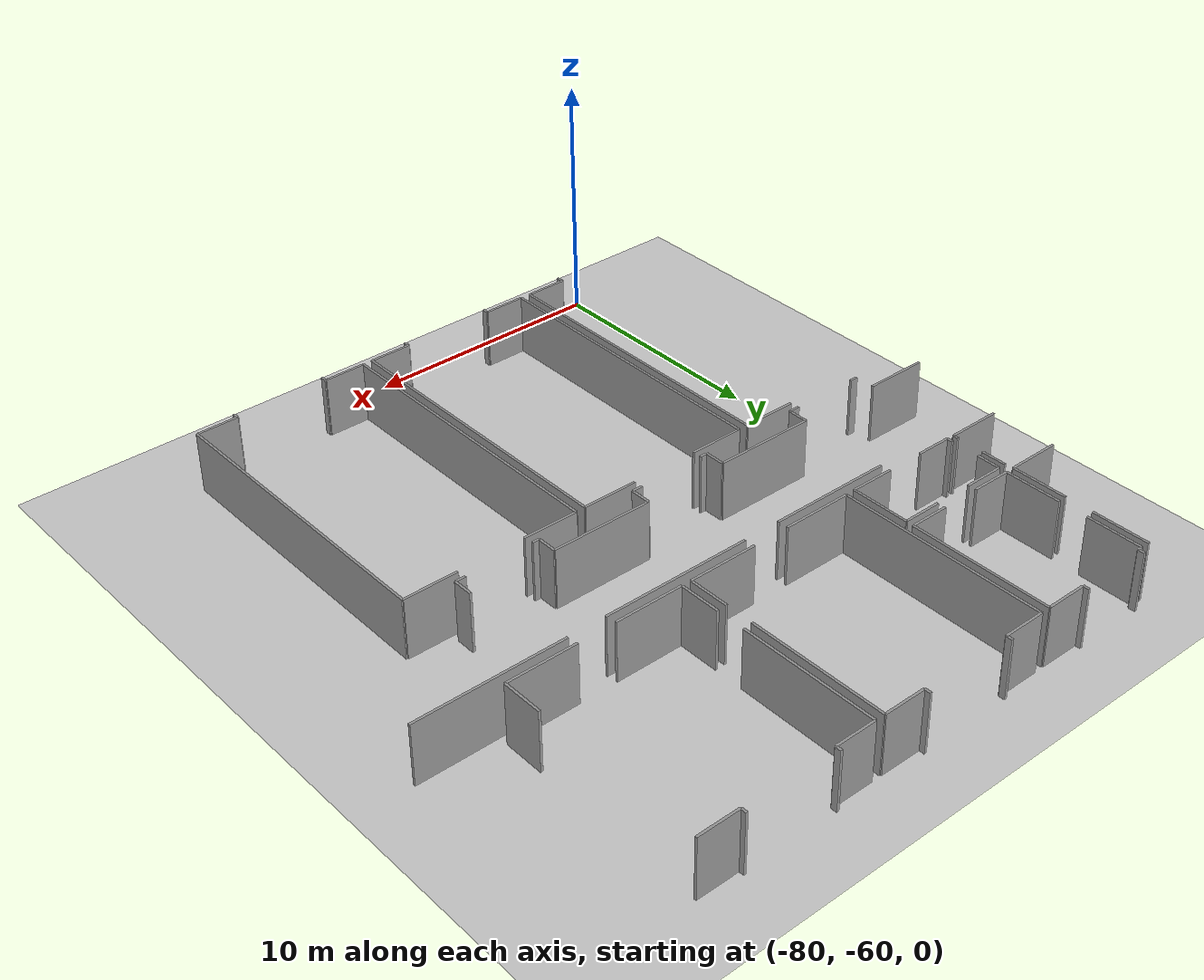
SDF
<sdf version="1.6">
 <world name="default">
  <model name="ground_plane">
   <static>1</static>
   <link name="link">
    <collision name="collision">
     <geometry><plane><normal>0 0 1</normal><size>100 100</size></plane></geometry>
     <surface><friction><ode><mu>100</mu><mu2>50</mu2></ode></friction></surface>
    </collision>
    <visual name="visual">
     <cast_shadows>0</cast_shadows>
     <geometry><plane><normal>0 0 1</normal><size>100 100</size></plane></geometry>
     <material>
      <script><uri>file://media/materials/scripts/gazebo.material</uri><name>Gazebo/Grey</name></script>
     </material>
    </visual>
   </link>
  </model>
  <model name="0510035520_A_40_1_103">
   <static>1</static>
   <link name="Wall_537">
    <collision name="Wall_537_Collision">
     <geometry><box><size>2.39617768923 0.1 2.5</size></box></geometry>
     <pose>1.19808884461 0 1.25 0 0 0</pose>
    </collision>
    <visual name="Wall_537_Visual">
     <pose>1.19808884461 0 1.25 0 0 0</pose>
     <geometry><box><size>2.39617768923 0.1 2.5</size></box></geometry>
     <material>
      <script><uri>file://media/materials/scripts/gazebo.material</uri><name>Gazebo/Grey</name></script>
      <ambient>1 1 1 1</ambient>
     </material>
    </visual>
    <pose>30.9848287765 -106.073184815 0 0 0 1.57079632679</pose>
   </link>
   <link name="Wall_538">
    <collision name="Wall_538_Collision">
     <geometry><box><size>2.30988382053 0.1 2.5</size></box></geometry>
     <pose>1.15494191027 0 1.25 0 0 0</pose>
    </collision>
    <visual name="Wall_538_Visual">
     <pose>1.15494191027 0 1.25 0 0 0</pose>
     <geometry><box><size>2.30988382053 0.1 2.5</size></box></geometry>
     <material>
      <script><uri>file://media/materials/scripts/gazebo.material</uri><name>Gazebo/Grey</name></script>
      <ambient>1 1 1 1</ambient>
     </material>
    </visual>
    <pose>30.9848287765 -102.481583239 0 0 0 1.57079632679</pose>
   </link>
   <link name="Wall_539">
    <collision name="Wall_539_Collision">
     <geometry><box><size>0.191876955095 0.1 2.5</size></box></geometry>
     <pose>0.0959384775477 0 1.25 0 0 0</pose>
    </collision>
    <visual name="Wall_539_Visual">
     <pose>0.0959384775477 0 1.25 0 0 0</pose>
     <geometry><box><size>0.191876955095 0.1 2.5</size></box></geometry>
     <material>
      <script><uri>file://media/materials/scripts/gazebo.material</uri><name>Gazebo/Grey</name></script>
      <ambient>1 1 1 1</ambient>
     </material>
    </visual>
    <pose>30.9848287765 -100.171699418 0 0 0 0.0</pose>
   </link>
   <link name="Wall_540">
    <collision name="Wall_540_Collision">
     <geometry><box><size>0.272587102874 0.1 2.5</size></box></geometry>
     <pose>0.136293551437 0 1.25 0 0 0</pose>
    </collision>
    <visual name="Wall_540_Visual">
     <pose>0.136293551437 0 1.25 0 0 0</pose>
     <geometry><box><size>0.272587102874 0.1 2.5</size></box></geometry>
     <material>
      <script><uri>file://media/materials/scripts/gazebo.material</uri><name>Gazebo/Grey</name></script>
      <ambient>1 1 1 1</ambient>
     </material>
    </visual>
    <pose>31.1767057316 -100.171699418 0 0 0 1.57079632679</pose>
   </link>
   <link name="Wall_541">
    <collision name="Wall_541_Collision">
     <geometry><box><size>0.253805496158 0.1 2.5</size></box></geometry>
     <pose>0.126902748079 0 1.25 0 0 0</pose>
    </collision>
    <visual name="Wall_541_Visual">
     <pose>0.126902748079 0 1.25 0 0 0</pose>
     <geometry><box><size>0.253805496158 0.1 2.5</size></box></geometry>
     <material>
      <script><uri>file://media/materials/scripts/gazebo.material</uri><name>Gazebo/Grey</name></script>
      <ambient>1 1 1 1</ambient>
     </material>
    </visual>
    <pose>34.1299864849 -99.8991123153 0 0 0 -1.57079632679</pose>
   </link>
   <link name="Wall_542">
    <collision name="Wall_542_Collision">
     <geometry><box><size>1.72207029143 0.1 2.5</size></box></geometry>
     <pose>0.861035145716 0 1.25 0 0 0</pose>
    </collision>
    <visual name="Wall_542_Visual">
     <pose>0.861035145716 0 1.25 0 0 0</pose>
     <geometry><box><size>1.72207029143 0.1 2.5</size></box></geometry>
     <material>
      <script><uri>file://media/materials/scripts/gazebo.material</uri><name>Gazebo/Grey</name></script>
      <ambient>1 1 1 1</ambient>
     </material>
    </visual>
    <pose>34.1299864849 -100.152917811 0 0 0 0.0</pose>
   </link>
   <link name="Wall_543">
    <collision name="Wall_543_Collision">
     <geometry><box><size>5.93295727819 0.1 2.5</size></box></geometry>
     <pose>2.96647863909 0 1.25 0 0 0</pose>
    </collision>
    <visual name="Wall_543_Visual">
     <pose>2.96647863909 0 1.25 0 0 0</pose>
     <geometry><box><size>5.93295727819 0.1 2.5</size></box></geometry>
     <material>
      <script><uri>file://media/materials/scripts/gazebo.material</uri><name>Gazebo/Grey</name></script>
      <ambient>1 1 1 1</ambient>
     </material>
    </visual>
    <pose>35.8520567763 -100.152917811 0 0 0 -1.57079632679</pose>
   </link>
   <link name="Wall_544">
    <collision name="Wall_544_Collision">
     <geometry><box><size>1.63323836778 0.1 2.5</size></box></geometry>
     <pose>0.816619183888 0 1.25 0 0 0</pose>
    </collision>
    <visual name="Wall_544_Visual">
     <pose>0.816619183888 0 1.25 0 0 0</pose>
     <geometry><box><size>1.63323836778 0.1 2.5</size></box></geometry>
     <material>
      <script><uri>file://media/materials/scripts/gazebo.material</uri><name>Gazebo/Grey</name></script>
      <ambient>1 1 1 1</ambient>
     </material>
    </visual>
    <pose>35.8520567763 -106.08587509 0 0 0 3.14159265359</pose>
   </link>
   <link name="Wall_545">
    <collision name="Wall_545_Collision">
     <geometry><box><size>1.63430286016 0.1 2.5</size></box></geometry>
     <pose>0.817151430079 0 1.25 0 0 0</pose>
    </collision>
    <visual name="Wall_545_Visual">
     <pose>0.817151430079 0 1.25 0 0 0</pose>
     <geometry><box><size>1.63430286016 0.1 2.5</size></box></geometry>
     <material>
      <script><uri>file://media/materials/scripts/gazebo.material</uri><name>Gazebo/Grey</name></script>
      <ambient>1 1 1 1</ambient>
     </material>
    </visual>
    <pose>32.6190823662 -106.08587509 0 0 0 3.13382762873</pose>
   </link>
   <link name="Wall_548">
    <collision name="Wall_548_Collision">
     <geometry><box><size>2.38044174847 0.1 2.5</size></box></geometry>
     <pose>1.19022087423 0 1.25 0 0 0</pose>
    </collision>
    <visual name="Wall_548_Visual">
     <pose>1.19022087423 0 1.25 0 0 0</pose>
     <geometry><box><size>2.38044174847 0.1 2.5</size></box></geometry>
     <material>
      <script><uri>file://media/materials/scripts/gazebo.material</uri><name>Gazebo/Grey</name></script>
      <ambient>1 1 1 1</ambient>
     </material>
    </visual>
    <pose>30.616303196 -100.156217283 0 0 0 -1.57079632679</pose>
   </link>
   <link name="Wall_549">
    <collision name="Wall_549_Collision">
     <geometry><box><size>2.3515079219 0.1 2.5</size></box></geometry>
     <pose>1.17575396095 0 1.25 0 0 0</pose>
    </collision>
    <visual name="Wall_549_Visual">
     <pose>1.17575396095 0 1.25 0 0 0</pose>
     <geometry><box><size>2.3515079219 0.1 2.5</size></box></geometry>
     <material>
      <script><uri>file://media/materials/scripts/gazebo.material</uri><name>Gazebo/Grey</name></script>
      <ambient>1 1 1 1</ambient>
     </material>
    </visual>
    <pose>30.616303196 -103.722438309 0 0 0 -1.57079632679</pose>
   </link>
   <link name="Wall_550">
    <collision name="Wall_550_Collision">
     <geometry><box><size>2.21295340846 0.1 2.5</size></box></geometry>
     <pose>1.10647670423 0 1.25 0 0 0</pose>
    </collision>
    <visual name="Wall_550_Visual">
     <pose>1.10647670423 0 1.25 0 0 0</pose>
     <geometry><box><size>2.21295340846 0.1 2.5</size></box></geometry>
     <material>
      <script><uri>file://media/materials/scripts/gazebo.material</uri><name>Gazebo/Grey</name></script>
      <ambient>1 1 1 1</ambient>
     </material>
    </visual>
    <pose>30.616303196 -106.073946231 0 0 0 -3.1370050037</pose>
   </link>
   <link name="Wall_553">
    <collision name="Wall_553_Collision">
     <geometry><box><size>1.06522166738 0.1 2.5</size></box></geometry>
     <pose>0.532610833688 0 1.25 0 0 0</pose>
    </collision>
    <visual name="Wall_553_Visual">
     <pose>0.532610833688 0 1.25 0 0 0</pose>
     <geometry><box><size>1.06522166738 0.1 2.5</size></box></geometry>
     <material>
      <script><uri>file://media/materials/scripts/gazebo.material</uri><name>Gazebo/Grey</name></script>
      <ambient>1 1 1 1</ambient>
     </material>
    </visual>
    <pose>30.6574196864 -106.418867901 0 0 0 -1.57079632679</pose>
   </link>
   <link name="Wall_554">
    <collision name="Wall_554_Collision">
     <geometry><box><size>0.21268900578 0.1 2.5</size></box></geometry>
     <pose>0.10634450289 0 1.25 0 0 0</pose>
    </collision>
    <visual name="Wall_554_Visual">
     <pose>0.10634450289 0 1.25 0 0 0</pose>
     <geometry><box><size>0.21268900578 0.1 2.5</size></box></geometry>
     <material>
      <script><uri>file://media/materials/scripts/gazebo.material</uri><name>Gazebo/Grey</name></script>
      <ambient>1 1 1 1</ambient>
     </material>
    </visual>
    <pose>30.6574196864 -108.650072017 0 0 0 -1.57079632679</pose>
   </link>
   <link name="Wall_555">
    <collision name="Wall_555_Collision">
     <geometry><box><size>2.24848145523 0.1 2.5</size></box></geometry>
     <pose>1.12424072762 0 1.25 0 0 0</pose>
    </collision>
    <visual name="Wall_555_Visual">
     <pose>1.12424072762 0 1.25 0 0 0</pose>
     <geometry><box><size>2.24848145523 0.1 2.5</size></box></geometry>
     <material>
      <script><uri>file://media/materials/scripts/gazebo.material</uri><name>Gazebo/Grey</name></script>
      <ambient>1 1 1 1</ambient>
     </material>
    </visual>
    <pose>30.6574196864 -108.862761023 0 0 0 -3.13752901189</pose>
   </link>
   <link name="Wall_556">
    <collision name="Wall_556_Collision">
     <geometry><box><size>1.65278139098 0.1 2.5</size></box></geometry>
     <pose>0.826390695491 0 1.25 0 0 0</pose>
    </collision>
    <visual name="Wall_556_Visual">
     <pose>0.826390695491 0 1.25 0 0 0</pose>
     <geometry><box><size>1.65278139098 0.1 2.5</size></box></geometry>
     <material>
      <script><uri>file://media/materials/scripts/gazebo.material</uri><name>Gazebo/Grey</name></script>
      <ambient>1 1 1 1</ambient>
     </material>
    </visual>
    <pose>30.9893972754 -106.418867901 0 0 0 0.0</pose>
   </link>
   <link name="Wall_557">
    <collision name="Wall_557_Collision">
     <geometry><box><size>1.5987208203 0.1 2.5</size></box></geometry>
     <pose>0.79936041015 0 1.25 0 0 0</pose>
    </collision>
    <visual name="Wall_557_Visual">
     <pose>0.79936041015 0 1.25 0 0 0</pose>
     <geometry><box><size>1.5987208203 0.1 2.5</size></box></geometry>
     <material>
      <script><uri>file://media/materials/scripts/gazebo.material</uri><name>Gazebo/Grey</name></script>
      <ambient>1 1 1 1</ambient>
     </material>
    </visual>
    <pose>34.2436913471 -106.418867901 0 0 0 0.0</pose>
   </link>
   <link name="Wall_558">
    <collision name="Wall_558_Collision">
     <geometry><box><size>2.46927367212 0.1 2.5</size></box></geometry>
     <pose>1.23463683606 0 1.25 0 0 0</pose>
    </collision>
    <visual name="Wall_558_Visual">
     <pose>1.23463683606 0 1.25 0 0 0</pose>
     <geometry><box><size>2.46927367212 0.1 2.5</size></box></geometry>
     <material>
      <script><uri>file://media/materials/scripts/gazebo.material</uri><name>Gazebo/Grey</name></script>
      <ambient>1 1 1 1</ambient>
     </material>
    </visual>
    <pose>35.8424121674 -106.418867901 0 0 0 -1.57079632679</pose>
   </link>
   <link name="Wall_559">
    <collision name="Wall_559_Collision">
     <geometry><box><size>1.83932843066 0.1 2.5</size></box></geometry>
     <pose>0.919664215329 0 1.25 0 0 0</pose>
    </collision>
    <visual name="Wall_559_Visual">
     <pose>0.919664215329 0 1.25 0 0 0</pose>
     <geometry><box><size>1.83932843066 0.1 2.5</size></box></geometry>
     <material>
      <script><uri>file://media/materials/scripts/gazebo.material</uri><name>Gazebo/Grey</name></script>
      <ambient>1 1 1 1</ambient>
     </material>
    </visual>
    <pose>35.8424121674 -108.888141573 0 0 0 3.14159265359</pose>
   </link>
   <link name="Wall_560">
    <collision name="Wall_560_Collision">
     <geometry><box><size>1.46775718428 0.1 2.5</size></box></geometry>
     <pose>0.733878592141 0 1.25 0 0 0</pose>
    </collision>
    <visual name="Wall_560_Visual">
     <pose>0.733878592141 0 1.25 0 0 0</pose>
     <geometry><box><size>1.46775718428 0.1 2.5</size></box></geometry>
     <material>
      <script><uri>file://media/materials/scripts/gazebo.material</uri><name>Gazebo/Grey</name></script>
      <ambient>1 1 1 1</ambient>
     </material>
    </visual>
    <pose>32.4350733815 -108.888141573 0 0 0 3.14159265359</pose>
   </link>
   <link name="Wall_561">
    <collision name="Wall_561_Collision">
     <geometry><box><size>0.253297885166 0.1 2.5</size></box></geometry>
     <pose>0.126648942583 0 1.25 0 0 0</pose>
    </collision>
    <visual name="Wall_561_Visual">
     <pose>0.126648942583 0 1.25 0 0 0</pose>
     <geometry><box><size>0.253297885166 0.1 2.5</size></box></geometry>
     <material>
      <script><uri>file://media/materials/scripts/gazebo.material</uri><name>Gazebo/Grey</name></script>
      <ambient>1 1 1 1</ambient>
     </material>
    </visual>
    <pose>30.9673161972 -108.888141573 0 0 0 1.57079632679</pose>
   </link>
   <link name="Wall_562">
    <collision name="Wall_562_Collision">
     <geometry><box><size>0.997699978845 0.1 2.5</size></box></geometry>
     <pose>0.498849989422 0 1.25 0 0 0</pose>
    </collision>
    <visual name="Wall_562_Visual">
     <pose>0.498849989422 0 1.25 0 0 0</pose>
     <geometry><box><size>0.997699978845 0.1 2.5</size></box></geometry>
     <material>
      <script><uri>file://media/materials/scripts/gazebo.material</uri><name>Gazebo/Grey</name></script>
      <ambient>1 1 1 1</ambient>
     </material>
    </visual>
    <pose>30.9673161972 -107.4163235 0 0 0 1.54866253741</pose>
   </link>
   <link name="Wall_563">
    <collision name="Wall_563_Collision">
     <geometry><box><size>8.72837101287 0.1 2.5</size></box></geometry>
     <pose>4.36418550644 0 1.25 0 0 0</pose>
    </collision>
    <visual name="Wall_563_Visual">
     <pose>4.36418550644 0 1.25 0 0 0</pose>
     <geometry><box><size>8.72837101287 0.1 2.5</size></box></geometry>
     <material>
      <script><uri>file://media/materials/scripts/gazebo.material</uri><name>Gazebo/Grey</name></script>
      <ambient>1 1 1 1</ambient>
     </material>
    </visual>
    <pose>36.2606836251 -108.875451298 0 0 0 1.57079632679</pose>
   </link>
   <link name="Wall_564">
    <collision name="Wall_564_Collision">
     <geometry><box><size>1.74237473112 0.1 2.5</size></box></geometry>
     <pose>0.871187365562 0 1.25 0 0 0</pose>
    </collision>
    <visual name="Wall_564_Visual">
     <pose>0.871187365562 0 1.25 0 0 0</pose>
     <geometry><box><size>1.74237473112 0.1 2.5</size></box></geometry>
     <material>
      <script><uri>file://media/materials/scripts/gazebo.material</uri><name>Gazebo/Grey</name></script>
      <ambient>1 1 1 1</ambient>
     </material>
    </visual>
    <pose>36.2606836251 -100.147080285 0 0 0 0.0</pose>
   </link>
   <link name="Wall_565">
    <collision name="Wall_565_Collision">
     <geometry><box><size>0.257104967608 0.1 2.5</size></box></geometry>
     <pose>0.128552483804 0 1.25 0 0 0</pose>
    </collision>
    <visual name="Wall_565_Visual">
     <pose>0.128552483804 0 1.25 0 0 0</pose>
     <geometry><box><size>0.257104967608 0.1 2.5</size></box></geometry>
     <material>
      <script><uri>file://media/materials/scripts/gazebo.material</uri><name>Gazebo/Grey</name></script>
      <ambient>1 1 1 1</ambient>
     </material>
    </visual>
    <pose>38.0030583562 -100.147080285 0 0 0 1.57079632679</pose>
   </link>
   <link name="Wall_566">
    <collision name="Wall_566_Collision">
     <geometry><box><size>0.266495770966 0.1 2.5</size></box></geometry>
     <pose>0.133247885483 0 1.25 0 0 0</pose>
    </collision>
    <visual name="Wall_566_Visual">
     <pose>0.133247885483 0 1.25 0 0 0</pose>
     <geometry><box><size>0.266495770966 0.1 2.5</size></box></geometry>
     <material>
      <script><uri>file://media/materials/scripts/gazebo.material</uri><name>Gazebo/Grey</name></script>
      <ambient>1 1 1 1</ambient>
     </material>
    </visual>
    <pose>41.8385670142 -99.8899753174 0 0 0 -1.57079632679</pose>
   </link>
   <link name="Wall_567">
    <collision name="Wall_567_Collision">
     <geometry><box><size>1.76496342028 0.1 2.5</size></box></geometry>
     <pose>0.882481710141 0 1.25 0 0 0</pose>
    </collision>
    <visual name="Wall_567_Visual">
     <pose>0.882481710141 0 1.25 0 0 0</pose>
     <geometry><box><size>1.76496342028 0.1 2.5</size></box></geometry>
     <material>
      <script><uri>file://media/materials/scripts/gazebo.material</uri><name>Gazebo/Grey</name></script>
      <ambient>1 1 1 1</ambient>
     </material>
    </visual>
    <pose>41.8385670142 -100.156471088 0 0 0 0.0</pose>
   </link>
   <link name="Wall_568">
    <collision name="Wall_568_Collision">
     <geometry><box><size>5.81214586202 0.1 2.5</size></box></geometry>
     <pose>2.90607293101 0 1.25 0 0 0</pose>
    </collision>
    <visual name="Wall_568_Visual">
     <pose>2.90607293101 0 1.25 0 0 0</pose>
     <geometry><box><size>5.81214586202 0.1 2.5</size></box></geometry>
     <material>
      <script><uri>file://media/materials/scripts/gazebo.material</uri><name>Gazebo/Grey</name></script>
      <ambient>1 1 1 1</ambient>
     </material>
    </visual>
    <pose>43.6035304345 -100.156471088 0 0 0 -1.57079632679</pose>
   </link>
   <link name="Wall_569">
    <collision name="Wall_569_Collision">
     <geometry><box><size>1.70760337815 0.1 2.5</size></box></geometry>
     <pose>0.853801689076 0 1.25 0 0 0</pose>
    </collision>
    <visual name="Wall_569_Visual">
     <pose>0.853801689076 0 1.25 0 0 0</pose>
     <geometry><box><size>1.70760337815 0.1 2.5</size></box></geometry>
     <material>
      <script><uri>file://media/materials/scripts/gazebo.material</uri><name>Gazebo/Grey</name></script>
      <ambient>1 1 1 1</ambient>
     </material>
    </visual>
    <pose>43.6035304345 -107.160741366 0 0 0 -1.57079632679</pose>
   </link>
   <link name="Wall_570">
    <collision name="Wall_570_Collision">
     <geometry><box><size>2.88906796277 0.1 2.5</size></box></geometry>
     <pose>1.44453398138 0 1.25 0 0 0</pose>
    </collision>
    <visual name="Wall_570_Visual">
     <pose>1.44453398138 0 1.25 0 0 0</pose>
     <geometry><box><size>2.88906796277 0.1 2.5</size></box></geometry>
     <material>
      <script><uri>file://media/materials/scripts/gazebo.material</uri><name>Gazebo/Grey</name></script>
      <ambient>1 1 1 1</ambient>
     </material>
    </visual>
    <pose>43.6035304345 -108.868344744 0 0 0 3.14159265359</pose>
   </link>
   <link name="Wall_571">
    <collision name="Wall_571_Collision">
     <geometry><box><size>2.89262996934 0.1 2.5</size></box></geometry>
     <pose>1.44631498467 0 1.25 0 0 0</pose>
    </collision>
    <visual name="Wall_571_Visual">
     <pose>1.44631498467 0 1.25 0 0 0</pose>
     <geometry><box><size>2.89262996934 0.1 2.5</size></box></geometry>
     <material>
      <script><uri>file://media/materials/scripts/gazebo.material</uri><name>Gazebo/Grey</name></script>
      <ambient>1 1 1 1</ambient>
     </material>
    </visual>
    <pose>39.1533048648 -108.868344744 0 0 0 -3.13913587166</pose>
   </link>
   <link name="Wall_572">
    <collision name="Wall_572_Collision">
     <geometry><box><size>1.73146109479 0.1 2.5</size></box></geometry>
     <pose>0.865730547395 0 1.25 0 0 0</pose>
    </collision>
    <visual name="Wall_572_Visual">
     <pose>0.865730547395 0 1.25 0 0 0</pose>
     <geometry><box><size>1.73146109479 0.1 2.5</size></box></geometry>
     <material>
      <script><uri>file://media/materials/scripts/gazebo.material</uri><name>Gazebo/Grey</name></script>
      <ambient>1 1 1 1</ambient>
     </material>
    </visual>
    <pose>44.0098730338 -108.873674659 0 0 0 1.57079632679</pose>
   </link>
   <link name="Wall_573">
    <collision name="Wall_573_Collision">
     <geometry><box><size>5.75859290233 0.1 2.5</size></box></geometry>
     <pose>2.87929645116 0 1.25 0 0 0</pose>
    </collision>
    <visual name="Wall_573_Visual">
     <pose>2.87929645116 0 1.25 0 0 0</pose>
     <geometry><box><size>5.75859290233 0.1 2.5</size></box></geometry>
     <material>
      <script><uri>file://media/materials/scripts/gazebo.material</uri><name>Gazebo/Grey</name></script>
      <ambient>1 1 1 1</ambient>
     </material>
    </visual>
    <pose>44.0098730338 -105.92242435 0 0 0 1.57079632679</pose>
   </link>
   <link name="Wall_574">
    <collision name="Wall_574_Collision">
     <geometry><box><size>1.717755598 0.1 2.5</size></box></geometry>
     <pose>0.858877798999 0 1.25 0 0 0</pose>
    </collision>
    <visual name="Wall_574_Visual">
     <pose>0.858877798999 0 1.25 0 0 0</pose>
     <geometry><box><size>1.717755598 0.1 2.5</size></box></geometry>
     <material>
      <script><uri>file://media/materials/scripts/gazebo.material</uri><name>Gazebo/Grey</name></script>
      <ambient>1 1 1 1</ambient>
     </material>
    </visual>
    <pose>44.0098730338 -100.163831448 0 0 0 0.0</pose>
   </link>
   <link name="Wall_575">
    <collision name="Wall_575_Collision">
     <geometry><box><size>0.248983191731 0.1 2.5</size></box></geometry>
     <pose>0.124491595866 0 1.25 0 0 0</pose>
    </collision>
    <visual name="Wall_575_Visual">
     <pose>0.124491595866 0 1.25 0 0 0</pose>
     <geometry><box><size>0.248983191731 0.1 2.5</size></box></geometry>
     <material>
      <script><uri>file://media/materials/scripts/gazebo.material</uri><name>Gazebo/Grey</name></script>
      <ambient>1 1 1 1</ambient>
     </material>
    </visual>
    <pose>45.7276286318 -100.163831448 0 0 0 1.57079632679</pose>
   </link>
   <link name="Wall_576">
    <collision name="Wall_576_Collision">
     <geometry><box><size>0.243399470816 0.1 2.5</size></box></geometry>
     <pose>0.121699735408 0 1.25 0 0 0</pose>
    </collision>
    <visual name="Wall_576_Visual">
     <pose>0.121699735408 0 1.25 0 0 0</pose>
     <geometry><box><size>0.243399470816 0.1 2.5</size></box></geometry>
     <material>
      <script><uri>file://media/materials/scripts/gazebo.material</uri><name>Gazebo/Grey</name></script>
      <ambient>1 1 1 1</ambient>
     </material>
    </visual>
    <pose>49.6012081142 -99.914848256 0 0 0 -1.57079632679</pose>
   </link>
   <link name="Wall_577">
    <collision name="Wall_577_Collision">
     <geometry><box><size>1.74338995311 0.1 2.5</size></box></geometry>
     <pose>0.871694976555 0 1.25 0 0 0</pose>
    </collision>
    <visual name="Wall_577_Visual">
     <pose>0.871694976555 0 1.25 0 0 0</pose>
     <geometry><box><size>1.74338995311 0.1 2.5</size></box></geometry>
     <material>
      <script><uri>file://media/materials/scripts/gazebo.material</uri><name>Gazebo/Grey</name></script>
      <ambient>1 1 1 1</ambient>
     </material>
    </visual>
    <pose>49.6012081142 -100.158247727 0 0 0 0.0</pose>
   </link>
   <link name="Wall_579">
    <collision name="Wall_579_Collision">
     <geometry><box><size>1.69668974182 0.1 2.5</size></box></geometry>
     <pose>0.848344870908 0 1.25 0 0 0</pose>
    </collision>
    <visual name="Wall_579_Visual">
     <pose>0.848344870908 0 1.25 0 0 0</pose>
     <geometry><box><size>1.69668974182 0.1 2.5</size></box></geometry>
     <material>
      <script><uri>file://media/materials/scripts/gazebo.material</uri><name>Gazebo/Grey</name></script>
      <ambient>1 1 1 1</ambient>
     </material>
    </visual>
    <pose>51.3445980673 -107.176984918 0 0 0 -1.57079632679</pose>
   </link>
   <link name="Wall_580">
    <collision name="Wall_580_Collision">
     <geometry><box><size>2.90251965406 0.1 2.5</size></box></geometry>
     <pose>1.45125982703 0 1.25 0 0 0</pose>
    </collision>
    <visual name="Wall_580_Visual">
     <pose>1.45125982703 0 1.25 0 0 0</pose>
     <geometry><box><size>2.90251965406 0.1 2.5</size></box></geometry>
     <material>
      <script><uri>file://media/materials/scripts/gazebo.material</uri><name>Gazebo/Grey</name></script>
      <ambient>1 1 1 1</ambient>
     </material>
    </visual>
    <pose>51.3445980673 -108.873674659 0 0 0 3.14159265359</pose>
   </link>
   <link name="Wall_581">
    <collision name="Wall_581_Collision">
     <geometry><box><size>2.84972811086 0.1 2.5</size></box></geometry>
     <pose>1.42486405543 0 1.25 0 0 0</pose>
    </collision>
    <visual name="Wall_581_Visual">
     <pose>1.42486405543 0 1.25 0 0 0</pose>
     <geometry><box><size>2.84972811086 0.1 2.5</size></box></geometry>
     <material>
      <script><uri>file://media/materials/scripts/gazebo.material</uri><name>Gazebo/Grey</name></script>
      <ambient>1 1 1 1</ambient>
     </material>
    </visual>
    <pose>46.8596011447 -108.873674659 0 0 0 3.14159265359</pose>
   </link>
   <link name="Wall_769">
    <collision name="Wall_769_Collision">
     <geometry><box><size>12.8765680421 0.1 2.5</size></box></geometry>
     <pose>6.43828402104 0 1.25 0 0 0</pose>
    </collision>
    <visual name="Wall_769_Visual">
     <pose>6.43828402104 0 1.25 0 0 0</pose>
     <geometry><box><size>12.8765680421 0.1 2.5</size></box></geometry>
     <material>
      <script><uri>file://media/materials/scripts/gazebo.material</uri><name>Gazebo/Grey</name></script>
      <ambient>1 1 1 1</ambient>
     </material>
    </visual>
    <pose>43.993629482 -127.211883173 0 0 0 1.57079632679</pose>
   </link>
   <link name="Wall_770">
    <collision name="Wall_770_Collision">
     <geometry><box><size>2.28881796435 0.1 2.5</size></box></geometry>
     <pose>1.14440898218 0 1.25 0 0 0</pose>
    </collision>
    <visual name="Wall_770_Visual">
     <pose>1.14440898218 0 1.25 0 0 0</pose>
     <geometry><box><size>2.28881796435 0.1 2.5</size></box></geometry>
     <material>
      <script><uri>file://media/materials/scripts/gazebo.material</uri><name>Gazebo/Grey</name></script>
      <ambient>1 1 1 1</ambient>
     </material>
    </visual>
    <pose>43.993629482 -114.335315131 0 0 0 0.0</pose>
   </link>
   <link name="Wall_771">
    <collision name="Wall_771_Collision">
     <geometry><box><size>2.23196553321 0.1 2.5</size></box></geometry>
     <pose>1.11598276661 0 1.25 0 0 0</pose>
    </collision>
    <visual name="Wall_771_Visual">
     <pose>1.11598276661 0 1.25 0 0 0</pose>
     <geometry><box><size>2.23196553321 0.1 2.5</size></box></geometry>
     <material>
      <script><uri>file://media/materials/scripts/gazebo.material</uri><name>Gazebo/Grey</name></script>
      <ambient>1 1 1 1</ambient>
     </material>
    </visual>
    <pose>49.0791302086 -114.335315131 0 0 0 0.0</pose>
   </link>
   <link name="Wall_772">
    <collision name="Wall_772_Collision">
     <geometry><box><size>12.8824055685 0.1 2.5</size></box></geometry>
     <pose>6.44120278425 0 1.25 0 0 0</pose>
    </collision>
    <visual name="Wall_772_Visual">
     <pose>6.44120278425 0 1.25 0 0 0</pose>
     <geometry><box><size>12.8824055685 0.1 2.5</size></box></geometry>
     <material>
      <script><uri>file://media/materials/scripts/gazebo.material</uri><name>Gazebo/Grey</name></script>
      <ambient>1 1 1 1</ambient>
     </material>
    </visual>
    <pose>51.3110957418 -114.335315131 0 0 0 -1.57079632679</pose>
   </link>
   <link name="Wall_773">
    <collision name="Wall_773_Collision">
     <geometry><box><size>1.7043039067 0.1 2.5</size></box></geometry>
     <pose>0.852151953351 0 1.25 0 0 0</pose>
    </collision>
    <visual name="Wall_773_Visual">
     <pose>0.852151953351 0 1.25 0 0 0</pose>
     <geometry><box><size>1.7043039067 0.1 2.5</size></box></geometry>
     <material>
      <script><uri>file://media/materials/scripts/gazebo.material</uri><name>Gazebo/Grey</name></script>
      <ambient>1 1 1 1</ambient>
     </material>
    </visual>
    <pose>51.3110957418 -127.2177207 0 0 0 3.14159265359</pose>
   </link>
   <link name="Wall_774">
    <collision name="Wall_774_Collision">
     <geometry><box><size>0.2510136357 0.1 2.5</size></box></geometry>
     <pose>0.12550681785 0 1.25 0 0 0</pose>
    </collision>
    <visual name="Wall_774_Visual">
     <pose>0.12550681785 0 1.25 0 0 0</pose>
     <geometry><box><size>0.2510136357 0.1 2.5</size></box></geometry>
     <material>
      <script><uri>file://media/materials/scripts/gazebo.material</uri><name>Gazebo/Grey</name></script>
      <ambient>1 1 1 1</ambient>
     </material>
    </visual>
    <pose>49.6067918351 -127.2177207 0 0 0 -1.57079632679</pose>
   </link>
   <link name="Wall_775">
    <collision name="Wall_775_Collision">
     <geometry><box><size>0.2510136357 0.1 2.5</size></box></geometry>
     <pose>0.12550681785 0 1.25 0 0 0</pose>
    </collision>
    <visual name="Wall_775_Visual">
     <pose>0.12550681785 0 1.25 0 0 0</pose>
     <geometry><box><size>0.2510136357 0.1 2.5</size></box></geometry>
     <material>
      <script><uri>file://media/materials/scripts/gazebo.material</uri><name>Gazebo/Grey</name></script>
      <ambient>1 1 1 1</ambient>
     </material>
    </visual>
    <pose>45.7172226065 -127.468734335 0 0 0 1.57079632679</pose>
   </link>
   <link name="Wall_776">
    <collision name="Wall_776_Collision">
     <geometry><box><size>1.72360300975 0.1 2.5</size></box></geometry>
     <pose>0.861801504876 0 1.25 0 0 0</pose>
    </collision>
    <visual name="Wall_776_Visual">
     <pose>0.861801504876 0 1.25 0 0 0</pose>
     <geometry><box><size>1.72360300975 0.1 2.5</size></box></geometry>
     <material>
      <script><uri>file://media/materials/scripts/gazebo.material</uri><name>Gazebo/Grey</name></script>
      <ambient>1 1 1 1</ambient>
     </material>
    </visual>
    <pose>45.7172226065 -127.2177207 0 0 0 3.13820583102</pose>
   </link>
   <link name="Wall_777">
    <collision name="Wall_777_Collision">
     <geometry><box><size>12.8849436235 0.1 2.5</size></box></geometry>
     <pose>6.44247181173 0 1.25 0 0 0</pose>
    </collision>
    <visual name="Wall_777_Visual">
     <pose>6.44247181173 0 1.25 0 0 0</pose>
     <geometry><box><size>12.8849436235 0.1 2.5</size></box></geometry>
     <material>
      <script><uri>file://media/materials/scripts/gazebo.material</uri><name>Gazebo/Grey</name></script>
      <ambient>1 1 1 1</ambient>
     </material>
    </visual>
    <pose>36.2467243228 -127.235233279 0 0 0 1.57079632679</pose>
   </link>
   <link name="Wall_778">
    <collision name="Wall_778_Collision">
     <geometry><box><size>2.25582324985 0.1 2.5</size></box></geometry>
     <pose>1.12791162493 0 1.25 0 0 0</pose>
    </collision>
    <visual name="Wall_778_Visual">
     <pose>1.12791162493 0 1.25 0 0 0</pose>
     <geometry><box><size>2.25582324985 0.1 2.5</size></box></geometry>
     <material>
      <script><uri>file://media/materials/scripts/gazebo.material</uri><name>Gazebo/Grey</name></script>
      <ambient>1 1 1 1</ambient>
     </material>
    </visual>
    <pose>36.2467243228 -114.350289656 0 0 0 0.0</pose>
   </link>
   <link name="Wall_779">
    <collision name="Wall_779_Collision">
     <geometry><box><size>2.27688910603 0.1 2.5</size></box></geometry>
     <pose>1.13844455302 0 1.25 0 0 0</pose>
    </collision>
    <visual name="Wall_779_Visual">
     <pose>1.13844455302 0 1.25 0 0 0</pose>
     <geometry><box><size>2.27688910603 0.1 2.5</size></box></geometry>
     <material>
      <script><uri>file://media/materials/scripts/gazebo.material</uri><name>Gazebo/Grey</name></script>
      <ambient>1 1 1 1</ambient>
     </material>
    </visual>
    <pose>41.3129358316 -114.350289656 0 0 0 0.0</pose>
   </link>
   <link name="Wall_780">
    <collision name="Wall_780_Collision">
     <geometry><box><size>12.8704767102 0.1 2.5</size></box></geometry>
     <pose>6.43523835509 0 1.25 0 0 0</pose>
    </collision>
    <visual name="Wall_780_Visual">
     <pose>6.43523835509 0 1.25 0 0 0</pose>
     <geometry><box><size>12.8704767102 0.1 2.5</size></box></geometry>
     <material>
      <script><uri>file://media/materials/scripts/gazebo.material</uri><name>Gazebo/Grey</name></script>
      <ambient>1 1 1 1</ambient>
     </material>
    </visual>
    <pose>43.5898249377 -114.350289656 0 0 0 -1.57079632679</pose>
   </link>
   <link name="Wall_781">
    <collision name="Wall_781_Collision">
     <geometry><box><size>1.72993826181 0.1 2.5</size></box></geometry>
     <pose>0.864969130907 0 1.25 0 0 0</pose>
    </collision>
    <visual name="Wall_781_Visual">
     <pose>0.864969130907 0 1.25 0 0 0</pose>
     <geometry><box><size>1.72993826181 0.1 2.5</size></box></geometry>
     <material>
      <script><uri>file://media/materials/scripts/gazebo.material</uri><name>Gazebo/Grey</name></script>
      <ambient>1 1 1 1</ambient>
     </material>
    </visual>
    <pose>43.5898249377 -127.220766366 0 0 0 3.14159265359</pose>
   </link>
   <link name="Wall_782">
    <collision name="Wall_782_Collision">
     <geometry><box><size>0.25964302257 0.1 2.5</size></box></geometry>
     <pose>0.129821511285 0 1.25 0 0 0</pose>
    </collision>
    <visual name="Wall_782_Visual">
     <pose>0.129821511285 0 1.25 0 0 0</pose>
     <geometry><box><size>0.25964302257 0.1 2.5</size></box></geometry>
     <material>
      <script><uri>file://media/materials/scripts/gazebo.material</uri><name>Gazebo/Grey</name></script>
      <ambient>1 1 1 1</ambient>
     </material>
    </visual>
    <pose>41.8598866758 -127.220766366 0 0 0 -1.57079632679</pose>
   </link>
   <link name="Wall_783">
    <collision name="Wall_783_Collision">
     <geometry><box><size>0.252282663181 0.1 2.5</size></box></geometry>
     <pose>0.126141331591 0 1.25 0 0 0</pose>
    </collision>
    <visual name="Wall_783_Visual">
     <pose>0.126141331591 0 1.25 0 0 0</pose>
     <geometry><box><size>0.252282663181 0.1 2.5</size></box></geometry>
     <material>
      <script><uri>file://media/materials/scripts/gazebo.material</uri><name>Gazebo/Grey</name></script>
      <ambient>1 1 1 1</ambient>
     </material>
    </visual>
    <pose>37.985545777 -127.480409388 0 0 0 1.57079632679</pose>
   </link>
   <link name="Wall_784">
    <collision name="Wall_784_Collision">
     <geometry><box><size>1.73883597634 0.1 2.5</size></box></geometry>
     <pose>0.869417988171 0 1.25 0 0 0</pose>
    </collision>
    <visual name="Wall_784_Visual">
     <pose>0.869417988171 0 1.25 0 0 0</pose>
     <geometry><box><size>1.73883597634 0.1 2.5</size></box></geometry>
     <material>
      <script><uri>file://media/materials/scripts/gazebo.material</uri><name>Gazebo/Grey</name></script>
      <ambient>1 1 1 1</ambient>
     </material>
    </visual>
    <pose>37.985545777 -127.228126725 0 0 0 -3.13750568175</pose>
   </link>
   <link name="Wall_787">
    <collision name="Wall_787_Collision">
     <geometry><box><size>2.24313297504 0.1 2.5</size></box></geometry>
     <pose>1.12156648752 0 1.25 0 0 0</pose>
    </collision>
    <visual name="Wall_787_Visual">
     <pose>1.12156648752 0 1.25 0 0 0</pose>
     <geometry><box><size>2.24313297504 0.1 2.5</size></box></geometry>
     <material>
      <script><uri>file://media/materials/scripts/gazebo.material</uri><name>Gazebo/Grey</name></script>
      <ambient>1 1 1 1</ambient>
     </material>
    </visual>
    <pose>33.5853198901 -114.349782045 0 0 0 0.0</pose>
   </link>
   <link name="Wall_788">
    <collision name="Wall_788_Collision">
     <geometry><box><size>12.8621011288 0.1 2.5</size></box></geometry>
     <pose>6.4310505644 0 1.25 0 0 0</pose>
    </collision>
    <visual name="Wall_788_Visual">
     <pose>6.4310505644 0 1.25 0 0 0</pose>
     <geometry><box><size>12.8621011288 0.1 2.5</size></box></geometry>
     <material>
      <script><uri>file://media/materials/scripts/gazebo.material</uri><name>Gazebo/Grey</name></script>
      <ambient>1 1 1 1</ambient>
     </material>
    </visual>
    <pose>35.8284528651 -114.349782045 0 0 0 -1.57079632679</pose>
   </link>
   <link name="Wall_789">
    <collision name="Wall_789_Collision">
     <geometry><box><size>1.72486215189 0.1 2.5</size></box></geometry>
     <pose>0.862431075945 0 1.25 0 0 0</pose>
    </collision>
    <visual name="Wall_789_Visual">
     <pose>0.862431075945 0 1.25 0 0 0</pose>
     <geometry><box><size>1.72486215189 0.1 2.5</size></box></geometry>
     <material>
      <script><uri>file://media/materials/scripts/gazebo.material</uri><name>Gazebo/Grey</name></script>
      <ambient>1 1 1 1</ambient>
     </material>
    </visual>
    <pose>35.8284528651 -127.211883173 0 0 0 3.14159265359</pose>
   </link>
   <link name="Wall_790">
    <collision name="Wall_790_Collision">
     <geometry><box><size>0.290353487605 0.1 2.5</size></box></geometry>
     <pose>0.145176743802 0 1.25 0 0 0</pose>
    </collision>
    <visual name="Wall_790_Visual">
     <pose>0.145176743802 0 1.25 0 0 0</pose>
     <geometry><box><size>0.290353487605 0.1 2.5</size></box></geometry>
     <material>
      <script><uri>file://media/materials/scripts/gazebo.material</uri><name>Gazebo/Grey</name></script>
      <ambient>1 1 1 1</ambient>
     </material>
    </visual>
    <pose>34.1035907133 -127.211883173 0 0 0 -1.57079632679</pose>
   </link>
   <link name="Wall_794">
    <collision name="Wall_794_Collision">
     <geometry><box><size>5.11494216407 0.1 2.5</size></box></geometry>
     <pose>2.55747108204 0 1.25 0 0 0</pose>
    </collision>
    <visual name="Wall_794_Visual">
     <pose>2.55747108204 0 1.25 0 0 0</pose>
     <geometry><box><size>5.11494216407 0.1 2.5</size></box></geometry>
     <material>
      <script><uri>file://media/materials/scripts/gazebo.material</uri><name>Gazebo/Grey</name></script>
      <ambient>1 1 1 1</ambient>
     </material>
    </visual>
    <pose>34.0464844766 -109.299814087 0 0 0 0.0</pose>
   </link>
   <link name="Wall_795">
    <collision name="Wall_795_Collision">
     <geometry><box><size>6.18067144244 0.1 2.5</size></box></geometry>
     <pose>3.09033572122 0 1.25 0 0 0</pose>
    </collision>
    <visual name="Wall_795_Visual">
     <pose>3.09033572122 0 1.25 0 0 0</pose>
     <geometry><box><size>6.18067144244 0.1 2.5</size></box></geometry>
     <material>
      <script><uri>file://media/materials/scripts/gazebo.material</uri><name>Gazebo/Grey</name></script>
      <ambient>1 1 1 1</ambient>
     </material>
    </visual>
    <pose>40.7421272708 -109.299814087 0 0 0 0.0</pose>
   </link>
   <link name="Wall_796">
    <collision name="Wall_796_Collision">
     <geometry><box><size>6.15782894779 0.1 2.5</size></box></geometry>
     <pose>3.07891447389 0 1.25 0 0 0</pose>
    </collision>
    <visual name="Wall_796_Visual">
     <pose>3.07891447389 0 1.25 0 0 0</pose>
     <geometry><box><size>6.15782894779 0.1 2.5</size></box></geometry>
     <material>
      <script><uri>file://media/materials/scripts/gazebo.material</uri><name>Gazebo/Grey</name></script>
      <ambient>1 1 1 1</ambient>
     </material>
    </visual>
    <pose>48.5009612883 -109.299814087 0 0 0 0.0</pose>
   </link>
   <link name="Wall_857">
    <collision name="Wall_857_Collision">
     <geometry><box><size>0.823852640529 0.1 2.5</size></box></geometry>
     <pose>0.411926320264 0 1.25 0 0 0</pose>
    </collision>
    <visual name="Wall_857_Visual">
     <pose>0.411926320264 0 1.25 0 0 0</pose>
     <geometry><box><size>0.823852640529 0.1 2.5</size></box></geometry>
     <material>
      <script><uri>file://media/materials/scripts/gazebo.material</uri><name>Gazebo/Grey</name></script>
      <ambient>1 1 1 1</ambient>
     </material>
    </visual>
    <pose>49.4529857044 -113.137606995 0 0 0 -1.57079632679</pose>
   </link>
   <link name="Wall_858">
    <collision name="Wall_858_Collision">
     <geometry><box><size>0.414971986218 0.1 2.5</size></box></geometry>
     <pose>0.207485993109 0 1.25 0 0 0</pose>
    </collision>
    <visual name="Wall_858_Visual">
     <pose>0.207485993109 0 1.25 0 0 0</pose>
     <geometry><box><size>0.414971986218 0.1 2.5</size></box></geometry>
     <material>
      <script><uri>file://media/materials/scripts/gazebo.material</uri><name>Gazebo/Grey</name></script>
      <ambient>1 1 1 1</ambient>
     </material>
    </visual>
    <pose>49.4529857044 -113.961459635 0 0 0 3.14159265359</pose>
   </link>
   <link name="Wall_859">
    <collision name="Wall_859_Collision">
     <geometry><box><size>0.296191014016 0.1 2.5</size></box></geometry>
     <pose>0.148095507008 0 1.25 0 0 0</pose>
    </collision>
    <visual name="Wall_859_Visual">
     <pose>0.148095507008 0 1.25 0 0 0</pose>
     <geometry><box><size>0.296191014016 0.1 2.5</size></box></geometry>
     <material>
      <script><uri>file://media/materials/scripts/gazebo.material</uri><name>Gazebo/Grey</name></script>
      <ambient>1 1 1 1</ambient>
     </material>
    </visual>
    <pose>46.2276254592 -113.961459635 0 0 0 3.14159265359</pose>
   </link>
   <link name="Wall_860">
    <collision name="Wall_860_Collision">
     <geometry><box><size>0.828167333964 0.1 2.5</size></box></geometry>
     <pose>0.414083666982 0 1.25 0 0 0</pose>
    </collision>
    <visual name="Wall_860_Visual">
     <pose>0.414083666982 0 1.25 0 0 0</pose>
     <geometry><box><size>0.828167333964 0.1 2.5</size></box></geometry>
     <material>
      <script><uri>file://media/materials/scripts/gazebo.material</uri><name>Gazebo/Grey</name></script>
      <ambient>1 1 1 1</ambient>
     </material>
    </visual>
    <pose>45.9314344452 -113.961459635 0 0 0 1.57079632679</pose>
   </link>
   <link name="Wall_861">
    <collision name="Wall_861_Collision">
     <geometry><box><size>4.21596309668 0.1 2.5</size></box></geometry>
     <pose>2.10798154834 0 1.25 0 0 0</pose>
    </collision>
    <visual name="Wall_861_Visual">
     <pose>2.10798154834 0 1.25 0 0 0</pose>
     <geometry><box><size>4.21596309668 0.1 2.5</size></box></geometry>
     <material>
      <script><uri>file://media/materials/scripts/gazebo.material</uri><name>Gazebo/Grey</name></script>
      <ambient>1 1 1 1</ambient>
     </material>
    </visual>
    <pose>45.9314344452 -113.133292301 0 0 0 3.14159265359</pose>
   </link>
   <link name="Wall_862">
    <collision name="Wall_862_Collision">
     <geometry><box><size>0.848471773656 0.1 2.5</size></box></geometry>
     <pose>0.424235886828 0 1.25 0 0 0</pose>
    </collision>
    <visual name="Wall_862_Visual">
     <pose>0.424235886828 0 1.25 0 0 0</pose>
     <geometry><box><size>0.848471773656 0.1 2.5</size></box></geometry>
     <material>
      <script><uri>file://media/materials/scripts/gazebo.material</uri><name>Gazebo/Grey</name></script>
      <ambient>1 1 1 1</ambient>
     </material>
    </visual>
    <pose>41.7154713485 -113.133292301 0 0 0 -1.57079632679</pose>
   </link>
   <link name="Wall_863">
    <collision name="Wall_863_Collision">
     <geometry><box><size>0.418525263165 0.1 2.5</size></box></geometry>
     <pose>0.209262631582 0 1.25 0 0 0</pose>
    </collision>
    <visual name="Wall_863_Visual">
     <pose>0.209262631582 0 1.25 0 0 0</pose>
     <geometry><box><size>0.418525263165 0.1 2.5</size></box></geometry>
     <material>
      <script><uri>file://media/materials/scripts/gazebo.material</uri><name>Gazebo/Grey</name></script>
      <ambient>1 1 1 1</ambient>
     </material>
    </visual>
    <pose>41.7154713485 -113.981764075 0 0 0 3.14159265359</pose>
   </link>
   <link name="Wall_864">
    <collision name="Wall_864_Collision">
     <geometry><box><size>0.303043762413 0.1 2.5</size></box></geometry>
     <pose>0.151521881206 0 1.25 0 0 0</pose>
    </collision>
    <visual name="Wall_864_Visual">
     <pose>0.151521881206 0 1.25 0 0 0</pose>
     <geometry><box><size>0.303043762413 0.1 2.5</size></box></geometry>
     <material>
      <script><uri>file://media/materials/scripts/gazebo.material</uri><name>Gazebo/Grey</name></script>
      <ambient>1 1 1 1</ambient>
     </material>
    </visual>
    <pose>38.4906187143 -113.981764075 0 0 0 3.14159265359</pose>
   </link>
   <link name="Wall_865">
    <collision name="Wall_865_Collision">
     <geometry><box><size>0.836796720833 0.1 2.5</size></box></geometry>
     <pose>0.418398360417 0 1.25 0 0 0</pose>
    </collision>
    <visual name="Wall_865_Visual">
     <pose>0.418398360417 0 1.25 0 0 0</pose>
     <geometry><box><size>0.836796720833 0.1 2.5</size></box></geometry>
     <material>
      <script><uri>file://media/materials/scripts/gazebo.material</uri><name>Gazebo/Grey</name></script>
      <ambient>1 1 1 1</ambient>
     </material>
    </visual>
    <pose>38.1875749519 -113.981764075 0 0 0 1.57079632679</pose>
   </link>
   <link name="Wall_866">
    <collision name="Wall_866_Collision">
     <geometry><box><size>4.20022715592 0.1 2.5</size></box></geometry>
     <pose>2.10011357796 0 1.25 0 0 0</pose>
    </collision>
    <visual name="Wall_866_Visual">
     <pose>2.10011357796 0 1.25 0 0 0</pose>
     <geometry><box><size>4.20022715592 0.1 2.5</size></box></geometry>
     <material>
      <script><uri>file://media/materials/scripts/gazebo.material</uri><name>Gazebo/Grey</name></script>
      <ambient>1 1 1 1</ambient>
     </material>
    </visual>
    <pose>38.1875749519 -113.144967354 0 0 0 3.14159265359</pose>
   </link>
   <link name="Wall_867">
    <collision name="Wall_867_Collision">
     <geometry><box><size>0.833243443887 0.1 2.5</size></box></geometry>
     <pose>0.416621721943 0 1.25 0 0 0</pose>
    </collision>
    <visual name="Wall_867_Visual">
     <pose>0.416621721943 0 1.25 0 0 0</pose>
     <geometry><box><size>0.833243443887 0.1 2.5</size></box></geometry>
     <material>
      <script><uri>file://media/materials/scripts/gazebo.material</uri><name>Gazebo/Grey</name></script>
      <ambient>1 1 1 1</ambient>
     </material>
    </visual>
    <pose>33.987347796 -113.144967354 0 0 0 -1.57079632679</pose>
   </link>
   <link name="Wall_868">
    <collision name="Wall_868_Collision">
     <geometry><box><size>0.447966700719 0.1 2.5</size></box></geometry>
     <pose>0.223983350359 0 1.25 0 0 0</pose>
    </collision>
    <visual name="Wall_868_Visual">
     <pose>0.223983350359 0 1.25 0 0 0</pose>
     <geometry><box><size>0.447966700719 0.1 2.5</size></box></geometry>
     <material>
      <script><uri>file://media/materials/scripts/gazebo.material</uri><name>Gazebo/Grey</name></script>
      <ambient>1 1 1 1</ambient>
     </material>
    </visual>
    <pose>33.987347796 -113.978210798 0 0 0 3.14159265359</pose>
   </link>
   <link name="Wall_869">
    <collision name="Wall_869_Collision">
     <geometry><box><size>0.339084142867 0.1 2.5</size></box></geometry>
     <pose>0.169542071434 0 1.25 0 0 0</pose>
    </collision>
    <visual name="Wall_869_Visual">
     <pose>0.169542071434 0 1.25 0 0 0</pose>
     <geometry><box><size>0.339084142867 0.1 2.5</size></box></geometry>
     <material>
      <script><uri>file://media/materials/scripts/gazebo.material</uri><name>Gazebo/Grey</name></script>
      <ambient>1 1 1 1</ambient>
     </material>
    </visual>
    <pose>30.7564038299 -113.978210798 0 0 0 3.14159265359</pose>
   </link>
   <link name="Wall_871">
    <collision name="Wall_871_Collision">
     <geometry><box><size>2.61952652585 0.1 2.5</size></box></geometry>
     <pose>1.30976326292 0 1.25 0 0 0</pose>
    </collision>
    <visual name="Wall_871_Visual">
     <pose>1.30976326292 0 1.25 0 0 0</pose>
     <geometry><box><size>2.61952652585 0.1 2.5</size></box></geometry>
     <material>
      <script><uri>file://media/materials/scripts/gazebo.material</uri><name>Gazebo/Grey</name></script>
      <ambient>1 1 1 1</ambient>
     </material>
    </visual>
    <pose>30.4173196871 -113.137606995 0 0 0 3.14159265359</pose>
   </link>
   <pose>-112.2 68.6448144365 0 0 0 0</pose>
  </model>
 </world>
</sdf>
